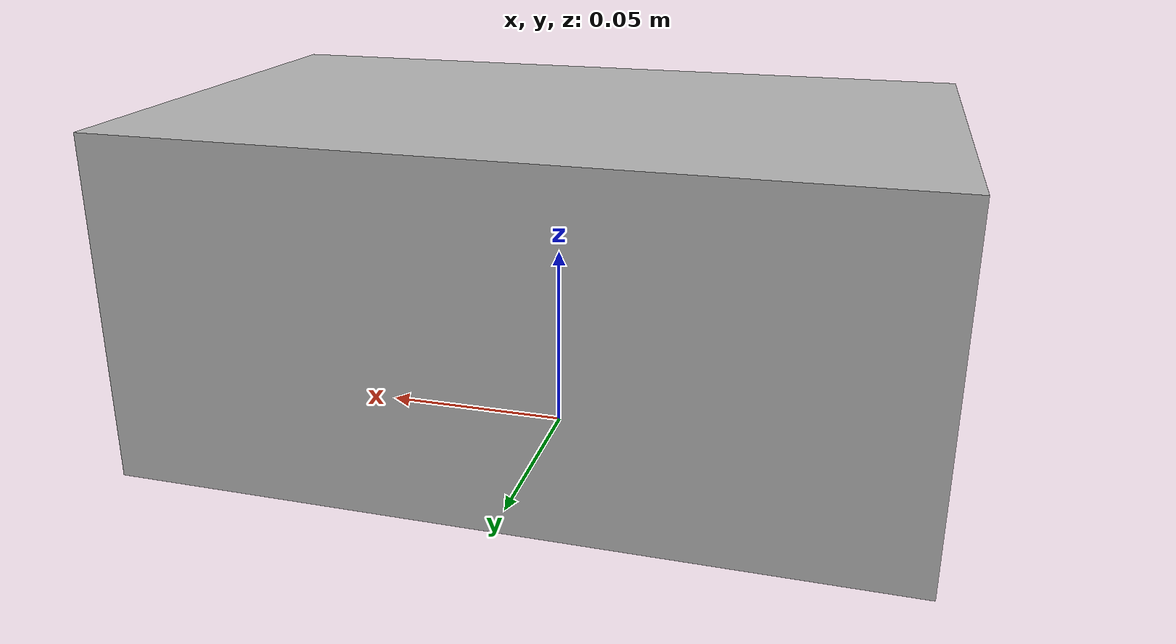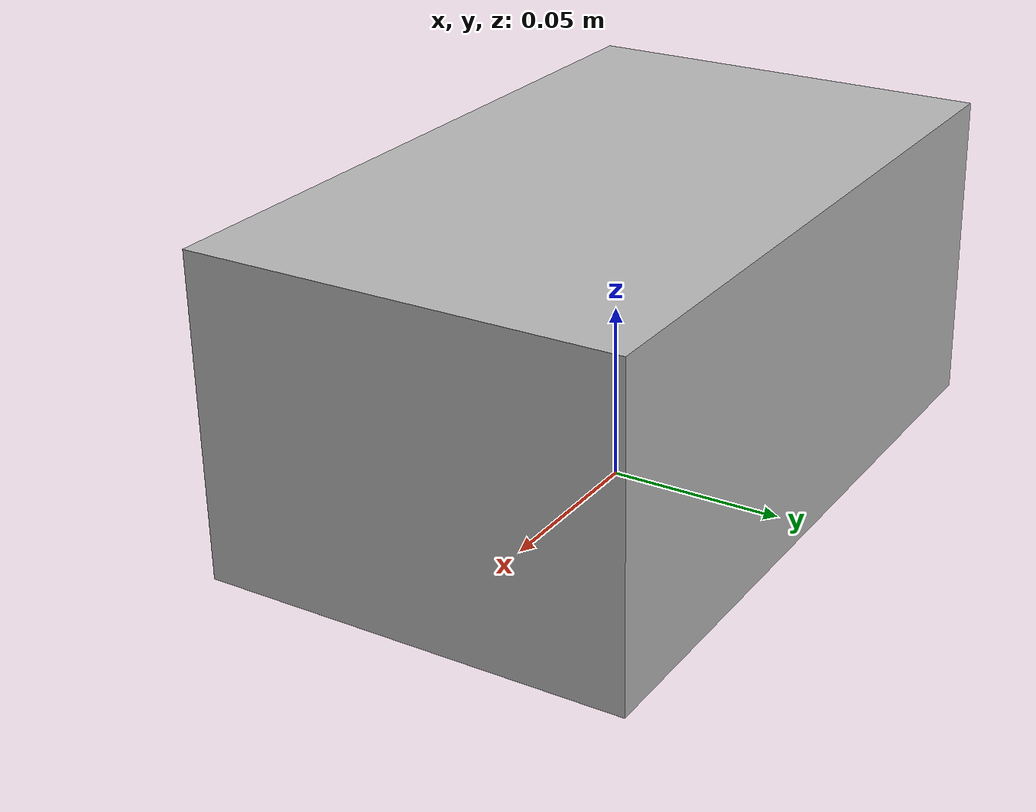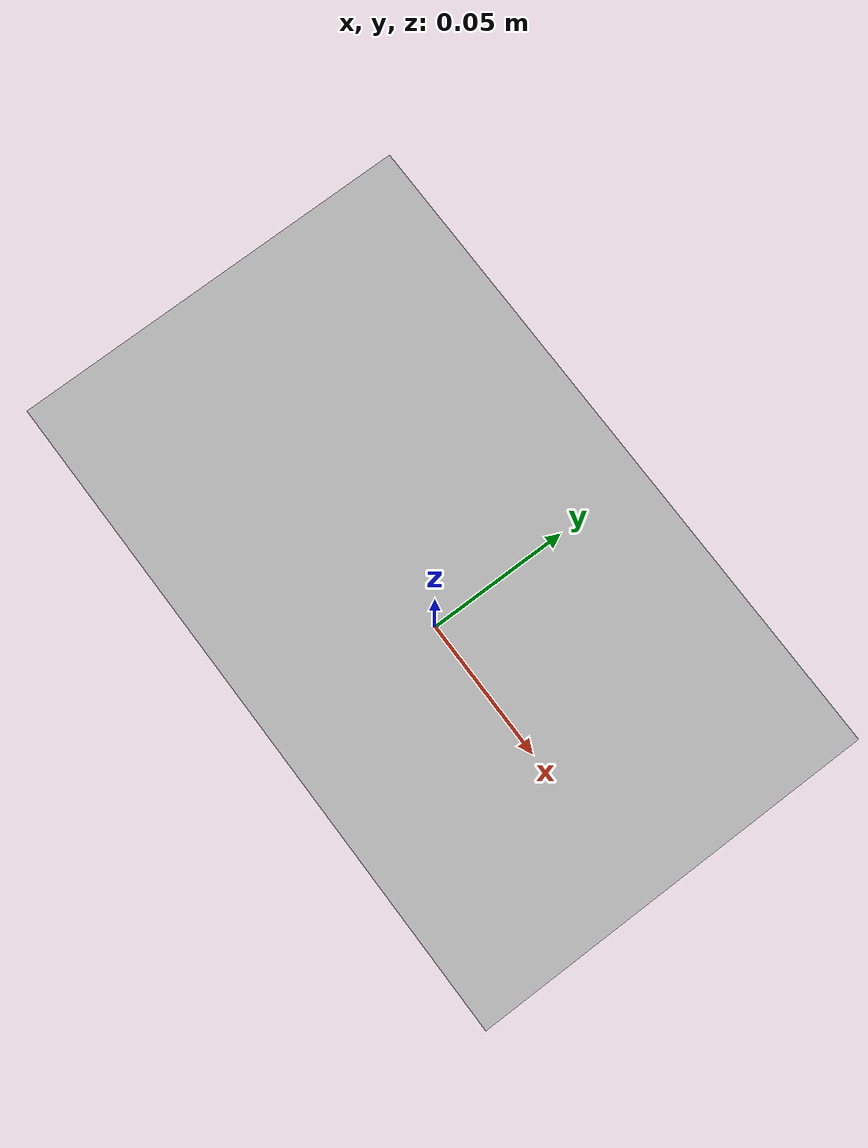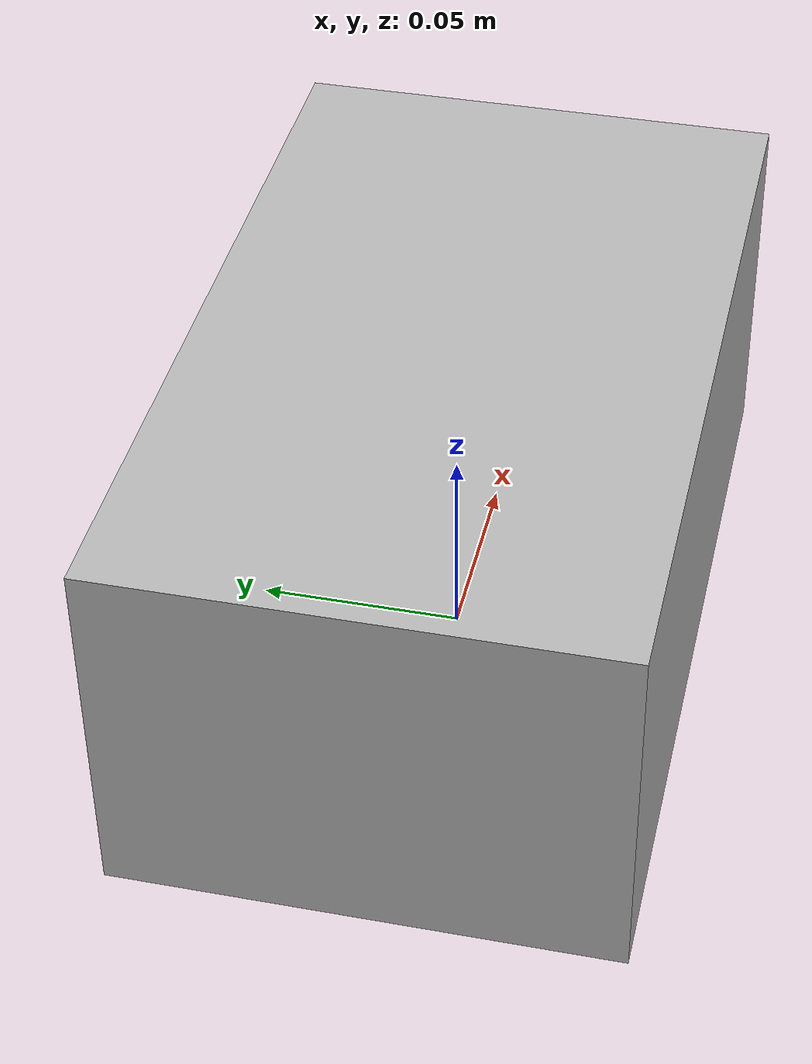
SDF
<?xml version="1.0" ?>
<sdf version="1.5">
  <model name="small_box_small">
    <pose>0 0 0.045 0 0 0</pose> <!-- lowered height accordingly -->
    <static>false</static>
    <link name="link">
      <inertial>
        <mass>1.0</mass> <!-- reduced mass -->
        <inertia>
          <ixx>0.000215</ixx>
          <ixy>0</ixy>
          <ixz>0</ixz>
          <iyy>0.000215</iyy>
          <iyz>0</iyz>
          <izz>0.000215</izz>
        </inertia>
      </inertial>

      <collision name="collision">
        <geometry>
          <box>
            <size>0.20 0.115 0.09</size> <!-- half of original -->
          </box>
        </geometry>
        <surface>
          <contact>
            <ode>
              <max_vel>0.1</max_vel>
              <min_depth>0.001</min_depth>
            </ode>
          </contact>
        </surface>
      </collision>

      <visual name="visual">
        <geometry>
          <mesh>
            <uri>model://small_box/meshes/small_box.dae</uri>
            <scale>0.5 0.5 0.5</scale> <!-- scale mesh visually -->
          </mesh>
        </geometry>
      </visual>
    </link>
  </model>
</sdf>
